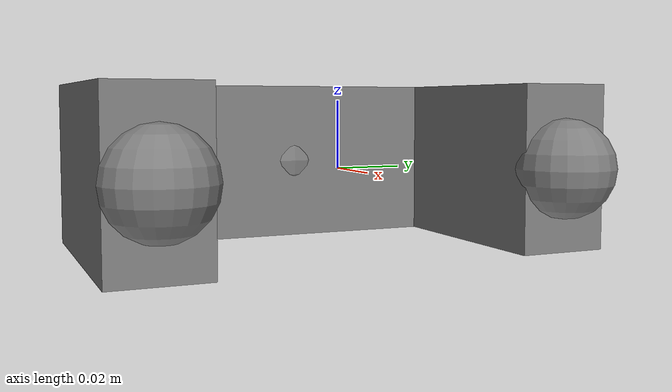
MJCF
<mujoco model="shape_c">
  <worldbody>
    <body name="shape">
      <geom name="spine" type="box" size="0.014 0.06 0.025"
        pos="-0.05 0.0 0.0" />
      <geom name="arm_top" type="box" size="0.04 0.014 0.025"
        pos="-0.01 0.06 0.0" />
      <geom name="arm_bot" type="box" size="0.04 0.014 0.025"
        pos="-0.01 -0.06 0.0" />
      <site name="attractor_site1" pos="0.03 0.06 0.0" size="0.015" />
      <site name="attractor_site2" pos="-0.05 0.0 0.0" size="0.015" />
      <site name="attractor_site3" pos="0.03 -0.06 0.0" size="0.015" />
    </body>
  </worldbody>
</mujoco>
